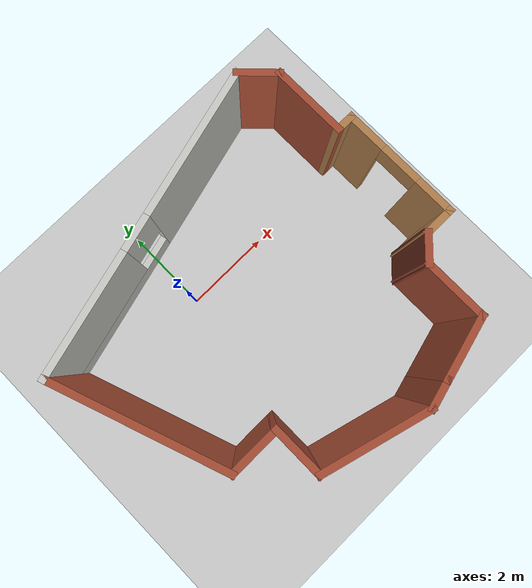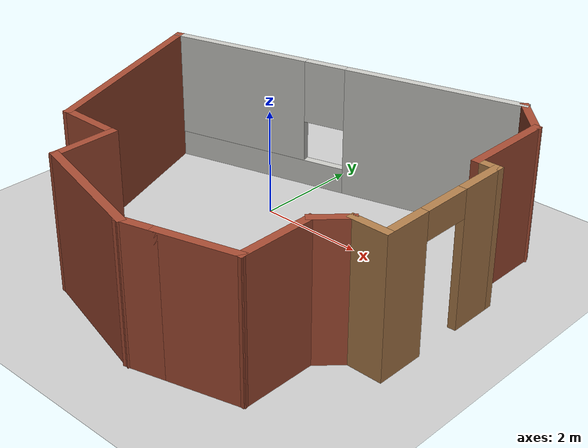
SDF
<sdf version="1.7">
 <world name="default">
  <light name="sun" type="directional">
   <pose>0 0 10 0 -0 0</pose>
   <diffuse>0.8 0.8 0.8 1</diffuse>
   <specular>0.2 0.2 0.2 1</specular>
   <attenuation>
    <range>1000</range>
    <constant>0.9</constant>
    <linear>0.01</linear>
    <quadratic>0.001</quadratic>
   </attenuation>
   <direction>-0.5 0.1 -0.9</direction>
   <spot><inner_angle>0</inner_angle><outer_angle>0</outer_angle><falloff>0</falloff></spot>
  </light>
  <model name="ground_plane">
   <static>1</static>
   <link name="link">
    <collision name="collision">
     <geometry><plane><normal>0 0 1</normal><size>100 100</size></plane></geometry>
     <surface>
      <contact><collide_bitmask>65535</collide_bitmask></contact>
      <friction><ode><mu>100</mu><mu2>50</mu2></ode></friction>
     </surface>
    </collision>
    <visual name="visual">
     <cast_shadows>0</cast_shadows>
     <geometry><plane><normal>0 0 1</normal><size>100 100</size></plane></geometry>
     <material>
      <script><uri>file://media/materials/scripts/gazebo.material</uri><name>Gazebo/Grey</name></script>
     </material>
    </visual>
   </link>
  </model>
  <gravity>0 0 -9.8</gravity>
  <magnetic_field>6e-06 2.3e-05 -4.2e-05</magnetic_field>
  <atmosphere type="adiabatic"/>
  <physics type="ode">
   <max_step_size>0.001</max_step_size>
   <real_time_factor>1</real_time_factor>
   <real_time_update_rate>1000</real_time_update_rate>
  </physics>
  <scene><ambient>0.4 0.4 0.4 1</ambient><background>0.7 0.7 0.7 1</background><shadows>1</shadows></scene>
  <audio><device>default</device></audio>
  <spherical_coordinates>
   <surface_model>EARTH_WGS84</surface_model>
   <latitude_deg>0</latitude_deg>
   <longitude_deg>0</longitude_deg>
   <elevation>0</elevation>
   <heading_deg>0</heading_deg>
  </spherical_coordinates>
  <model name="testbuilding">
   <pose>0.813475 -1.19112 0 0 -0 0</pose>
   <link name="Wall_0">
    <collision name="Wall_0_Collision">
     <geometry><box><size>1.25 0.15 2.5</size></box></geometry>
     <pose>0 0 1.25 0 -0 0</pose>
    </collision>
    <visual name="Wall_0_Visual">
     <pose>0 0 1.25 0 -0 0</pose>
     <geometry><box><size>1.25 0.15 2.5</size></box></geometry>
     <material>
      <script><uri>file://media/materials/scripts/gazebo.material</uri><name>Gazebo/Bricks</name></script>
      <ambient>1 1 1 1</ambient>
     </material>
     <meta><layer>0</layer></meta>
    </visual>
    <pose>-1.93348 -1.83888 0 0 -0 0</pose>
   </link>
   <link name="Wall_1">
    <collision name="Wall_1_Collision">
     <geometry><box><size>1.25 0.15 2.5</size></box></geometry>
     <pose>0 0 1.25 0 -0 0</pose>
    </collision>
    <visual name="Wall_1_Visual">
     <pose>0 0 1.25 0 -0 0</pose>
     <geometry><box><size>1.25 0.15 2.5</size></box></geometry>
     <material>
      <script><uri>file://media/materials/scripts/gazebo.material</uri><name>Gazebo/Bricks</name></script>
      <ambient>1 1 1 1</ambient>
     </material>
     <meta><layer>0</layer></meta>
    </visual>
    <pose>-1.38348 -2.38888 0 0 -0 -1.5708</pose>
   </link>
   <link name="Wall_10">
    <collision name="Wall_10_Collision">
     <geometry><box><size>1.75 0.15 2.5</size></box></geometry>
     <pose>0 0 1.25 0 -0 0</pose>
    </collision>
    <visual name="Wall_10_Visual">
     <pose>0 0 1.25 0 -0 0</pose>
     <geometry><box><size>1.75 0.15 2.5</size></box></geometry>
     <material>
      <script><uri>file://media/materials/scripts/gazebo.material</uri><name>Gazebo/Bricks</name></script>
      <ambient>1 1 1 1</ambient>
     </material>
     <meta><layer>0</layer></meta>
    </visual>
    <pose>3.44427 2.13185 0 0 -0 1.5708</pose>
   </link>
   <link name="Wall_11">
    <collision name="Wall_11_Collision">
     <geometry><box><size>1 0.15 2.5</size></box></geometry>
     <pose>0 0 1.25 0 -0 0</pose>
    </collision>
    <visual name="Wall_11_Visual">
     <pose>0 0 1.25 0 -0 0</pose>
     <geometry><box><size>1 0.15 2.5</size></box></geometry>
     <material>
      <script><uri>file://media/materials/scripts/gazebo.material</uri><name>Gazebo/Bricks</name></script>
      <ambient>1 1 1 1</ambient>
     </material>
     <meta><layer>0</layer></meta>
    </visual>
    <pose>3.14375 3.23238 0 0 -0 2.35619</pose>
   </link>
   <link name="Wall_12">
    <pose>-0.465067 2.64644 0 0 -0 -2.87979</pose>
    <visual name="Wall_12_Visual_0">
     <pose>-1.8124 0 1.25 0 -0 0</pose>
     <geometry><box><size>3.37521 0.15 2.5</size></box></geometry>
     <material>
      <script><uri>file://media/materials/scripts/gazebo.material</uri><name>Gazebo/CeilingTiled</name></script>
      <ambient>1 1 1 1</ambient>
     </material>
     <meta><layer>0</layer></meta>
    </visual>
    <collision name="Wall_12_Collision_0">
     <geometry><box><size>3.37521 0.15 2.5</size></box></geometry>
     <pose>-1.8124 0 1.25 0 -0 0</pose>
    </collision>
    <visual name="Wall_12_Visual_1">
     <pose>1.6876 0 0.25 0 -0 0</pose>
     <geometry><box><size>3.62479 0.15 0.5</size></box></geometry>
     <material>
      <script><uri>file://media/materials/scripts/gazebo.material</uri><name>Gazebo/CeilingTiled</name></script>
      <ambient>1 1 1 1</ambient>
     </material>
     <meta><layer>0</layer></meta>
    </visual>
    <collision name="Wall_12_Collision_1">
     <geometry><box><size>3.62479 0.15 0.5</size></box></geometry>
     <pose>1.6876 0 0.25 0 -0 0</pose>
    </collision>
    <visual name="Wall_12_Visual_2">
     <pose>2.0876 0 1.5 0 -0 0</pose>
     <geometry><box><size>2.82479 0.15 2</size></box></geometry>
     <material>
      <script><uri>file://media/materials/scripts/gazebo.material</uri><name>Gazebo/CeilingTiled</name></script>
      <ambient>1 1 1 1</ambient>
     </material>
     <meta><layer>0</layer></meta>
    </visual>
    <collision name="Wall_12_Collision_2">
     <geometry><box><size>2.82479 0.15 2</size></box></geometry>
     <pose>2.0876 0 1.5 0 -0 0</pose>
    </collision>
    <visual name="Wall_12_Visual_3">
     <pose>0.275206 0 1.9 0 -0 0</pose>
     <geometry><box><size>0.8 0.15 1.2</size></box></geometry>
     <material>
      <script><uri>file://media/materials/scripts/gazebo.material</uri><name>Gazebo/CeilingTiled</name></script>
      <ambient>1 1 1 1</ambient>
     </material>
     <meta><layer>0</layer></meta>
    </visual>
    <collision name="Wall_12_Collision_3">
     <geometry><box><size>0.8 0.15 1.2</size></box></geometry>
     <pose>0.275206 0 1.9 0 -0 0</pose>
    </collision>
   </link>
   <link name="Wall_13">
    <collision name="Wall_13_Collision">
     <geometry><box><size>3.97304 0.15 2.5</size></box></geometry>
     <pose>0 0 1.25 0 -0 0</pose>
    </collision>
    <visual name="Wall_13_Visual">
     <pose>0 0 1.25 0 -0 0</pose>
     <geometry><box><size>3.97304 0.15 2.5</size></box></geometry>
     <material>
      <script><uri>file://media/materials/scripts/gazebo.material</uri><name>Gazebo/Bricks</name></script>
      <ambient>1 1 1 1</ambient>
     </material>
     <meta><layer>0</layer></meta>
    </visual>
    <pose>-3.12842 -0.039448 0 0 -0 -1.22664</pose>
   </link>
   <link name="Wall_2">
    <collision name="Wall_2_Collision">
     <geometry><box><size>2.5 0.15 2.5</size></box></geometry>
     <pose>0 0 1.25 0 -0 0</pose>
    </collision>
    <visual name="Wall_2_Visual">
     <pose>0 0 1.25 0 -0 0</pose>
     <geometry><box><size>2.5 0.15 2.5</size></box></geometry>
     <material>
      <script><uri>file://media/materials/scripts/gazebo.material</uri><name>Gazebo/Bricks</name></script>
      <ambient>1 1 1 1</ambient>
     </material>
     <meta><layer>0</layer></meta>
    </visual>
    <pose>-0.248513 -3.24299 0 0 -0 -0.261799</pose>
   </link>
   <link name="Wall_3">
    <collision name="Wall_3_Collision">
     <geometry><box><size>0.75 0.15 2.5</size></box></geometry>
     <pose>0 0 1.25 0 -0 0</pose>
    </collision>
    <visual name="Wall_3_Visual">
     <pose>0 0 1.25 0 -0 0</pose>
     <geometry><box><size>0.75 0.15 2.5</size></box></geometry>
     <material>
      <script><uri>file://media/materials/scripts/gazebo.material</uri><name>Gazebo/Bricks</name></script>
      <ambient>1 1 1 1</ambient>
     </material>
     <meta><layer>0</layer></meta>
    </visual>
    <pose>1.17623 -3.46946 0 0 -0 0.261799</pose>
   </link>
   <link name="Wall_4">
    <collision name="Wall_4_Collision">
     <geometry><box><size>1.5 0.15 2.5</size></box></geometry>
     <pose>0 0 1.25 0 -0 0</pose>
    </collision>
    <visual name="Wall_4_Visual">
     <pose>0 0 1.25 0 -0 0</pose>
     <geometry><box><size>1.5 0.15 2.5</size></box></geometry>
     <material>
      <script><uri>file://media/materials/scripts/gazebo.material</uri><name>Gazebo/Bricks</name></script>
      <ambient>1 1 1 1</ambient>
     </material>
     <meta><layer>0</layer></meta>
    </visual>
    <pose>2.11801 -3.21711 0 0 -0 0.261799</pose>
   </link>
   <link name="Wall_5">
    <collision name="Wall_5_Collision">
     <geometry><box><size>1.5 0.15 2.5</size></box></geometry>
     <pose>0 0 1.25 0 -0 0</pose>
    </collision>
    <visual name="Wall_5_Visual">
     <pose>0 0 1.25 0 -0 0</pose>
     <geometry><box><size>1.5 0.15 2.5</size></box></geometry>
     <material>
      <script><uri>file://media/materials/scripts/gazebo.material</uri><name>Gazebo/Bricks</name></script>
      <ambient>1 1 1 1</ambient>
     </material>
     <meta><layer>0</layer></meta>
    </visual>
    <pose>2.77001 -2.36741 0 0 -0 1.5708</pose>
   </link>
   <link name="Wall_6">
    <collision name="Wall_6_Collision">
     <geometry><box><size>0.75 0.15 2.5</size></box></geometry>
     <pose>0 0 1.25 0 -0 0</pose>
    </collision>
    <visual name="Wall_6_Visual">
     <pose>0 0 1.25 0 -0 0</pose>
     <geometry><box><size>0.75 0.15 2.5</size></box></geometry>
     <material>
      <script><uri>file://media/materials/scripts/gazebo.material</uri><name>Gazebo/Bricks</name></script>
      <ambient>1 1 1 1</ambient>
     </material>
     <meta><layer>0</layer></meta>
    </visual>
    <pose>2.98214 -1.48028 0 0 -0 0.785398</pose>
   </link>
   <link name="Wall_7">
    <collision name="Wall_7_Collision">
     <geometry><box><size>0.75 0.15 2.5</size></box></geometry>
     <pose>0 0 1.25 0 -0 0</pose>
    </collision>
    <visual name="Wall_7_Visual">
     <pose>0 0 1.25 0 -0 0</pose>
     <geometry><box><size>0.75 0.15 2.5</size></box></geometry>
     <material>
      <script><uri>file://media/materials/scripts/gazebo.material</uri><name>Gazebo/Wood</name></script>
      <ambient>1 1 1 1</ambient>
     </material>
     <meta><layer>0</layer></meta>
    </visual>
    <pose>3.49427 -1.26815 0 0 -0 0</pose>
   </link>
   <link name="Wall_8">
    <pose>3.79427 0.031855 0 0 -0 1.5708</pose>
    <visual name="Wall_8_Visual_0">
     <pose>-0.920246 0 1.25 0 -0 0</pose>
     <geometry><box><size>0.909507 0.15 2.5</size></box></geometry>
     <material>
      <script><uri>file://media/materials/scripts/gazebo.material</uri><name>Gazebo/Wood</name></script>
      <ambient>1 1 1 1</ambient>
     </material>
     <meta><layer>0</layer></meta>
    </visual>
    <collision name="Wall_8_Collision_0">
     <geometry><box><size>0.909507 0.15 2.5</size></box></geometry>
     <pose>-0.920246 0 1.25 0 -0 0</pose>
    </collision>
    <visual name="Wall_8_Visual_1">
     <pose>0.904754 0 1.25 0 -0 0</pose>
     <geometry><box><size>0.940493 0.15 2.5</size></box></geometry>
     <material>
      <script><uri>file://media/materials/scripts/gazebo.material</uri><name>Gazebo/Wood</name></script>
      <ambient>1 1 1 1</ambient>
     </material>
     <meta><layer>0</layer></meta>
    </visual>
    <collision name="Wall_8_Collision_1">
     <geometry><box><size>0.940493 0.15 2.5</size></box></geometry>
     <pose>0.904754 0 1.25 0 -0 0</pose>
    </collision>
    <visual name="Wall_8_Visual_2">
     <pose>-0.015493 0 2.25 0 -0 0</pose>
     <geometry><box><size>0.9 0.15 0.5</size></box></geometry>
     <material>
      <script><uri>file://media/materials/scripts/gazebo.material</uri><name>Gazebo/Wood</name></script>
      <ambient>1 1 1 1</ambient>
     </material>
     <meta><layer>0</layer></meta>
    </visual>
    <collision name="Wall_8_Collision_2">
     <geometry><box><size>0.9 0.15 0.5</size></box></geometry>
     <pose>-0.015493 0 2.25 0 -0 0</pose>
    </collision>
   </link>
   <link name="Wall_9">
    <collision name="Wall_9_Collision">
     <geometry><box><size>0.5 0.15 2.5</size></box></geometry>
     <pose>0 0 1.25 0 -0 0</pose>
    </collision>
    <visual name="Wall_9_Visual">
     <pose>0 0 1.25 0 -0 0</pose>
     <geometry><box><size>0.5 0.15 2.5</size></box></geometry>
     <material>
      <script><uri>file://media/materials/scripts/gazebo.material</uri><name>Gazebo/Wood</name></script>
      <ambient>1 1 1 1</ambient>
     </material>
     <meta><layer>0</layer></meta>
    </visual>
    <pose>3.61927 1.33186 0 0 -0 3.14159</pose>
   </link>
   <static>1</static>
  </model>
 </world>
</sdf>
